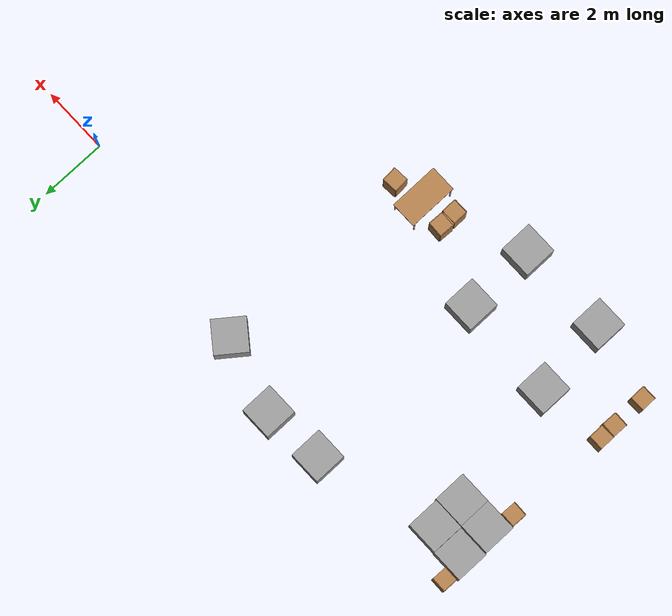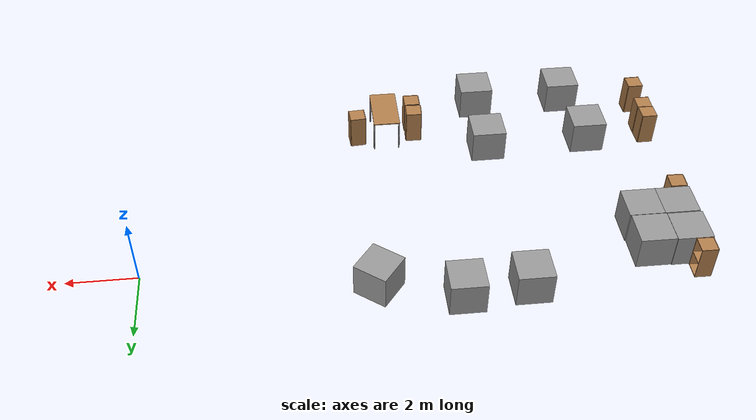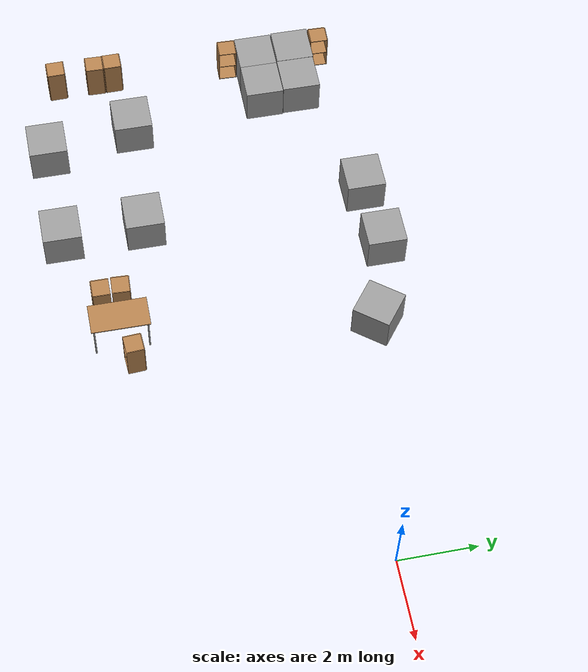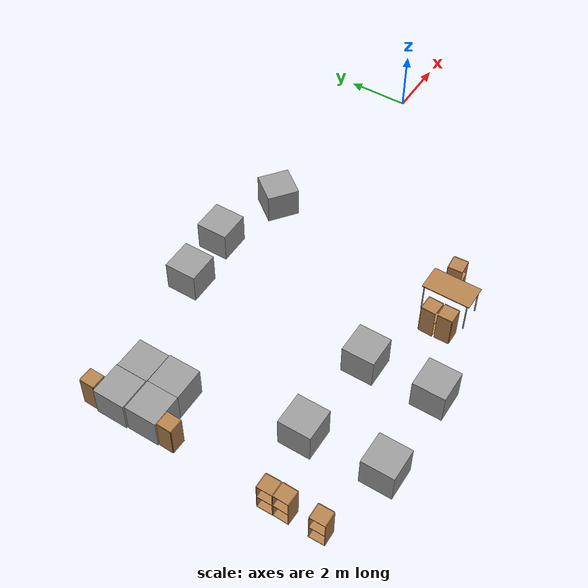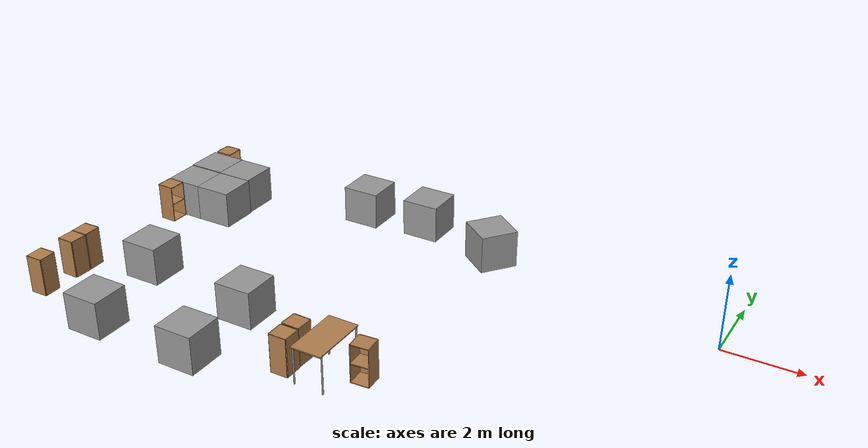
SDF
<sdf version="1.4">
 <world name="default">
  <model name="unit_box_10">
   <pose>-13.3082 -4.25233 0.726005 0 -0 0.000186</pose>
   <link name="link">
    <inertial>
     <mass>1</mass>
     <inertia><ixx>1</ixx><ixy>0</ixy><ixz>0</ixz><iyy>1</iyy><iyz>0</iyz><izz>1</izz></inertia>
    </inertial>
    <collision name="collision"><geometry><box><size>0.908301 0.843927 1.45201</size></box></geometry></collision>
    <visual name="visual">
     <geometry><box><size>1 1 1</size></box></geometry>
     <material>
      <script><uri>file://media/materials/scripts/gazebo.material</uri><name>Gazebo/Grey</name></script>
     </material>
    </visual>
    <velocity_decay><linear>0</linear><angular>0</angular></velocity_decay>
   </link>
   <static>0</static>
  </model>
  <model name="table">
   <static>1</static>
   <link name="link">
    <collision name="surface">
     <pose>0 0 1 0 -0 0</pose>
     <geometry><box><size>1.5 0.8 0.03</size></box></geometry>
     <surface><friction><ode><mu>0.6</mu><mu2>0.6</mu2></ode></friction></surface>
    </collision>
    <visual name="visual1">
     <pose>0 0 1 0 -0 0</pose>
     <geometry><box><size>1.5 0.8 0.03</size></box></geometry>
     <material>
      <script><uri>file://media/materials/scripts/gazebo.material</uri><name>Gazebo/Wood</name></script>
     </material>
    </visual>
    <collision name="front_left_leg">
     <pose>0.68 0.38 0.5 0 -0 0</pose>
     <geometry><cylinder><radius>0.02</radius><length>1</length></cylinder></geometry>
    </collision>
    <visual name="front_left_leg">
     <pose>0.68 0.38 0.5 0 -0 0</pose>
     <geometry><cylinder><radius>0.02</radius><length>1</length></cylinder></geometry>
     <material>
      <script><uri>file://media/materials/scripts/gazebo.material</uri><name>Gazebo/Grey</name></script>
     </material>
    </visual>
    <collision name="front_right_leg">
     <pose>0.68 -0.38 0.5 0 -0 0</pose>
     <geometry><cylinder><radius>0.02</radius><length>1</length></cylinder></geometry>
    </collision>
    <visual name="front_right_leg">
     <pose>0.68 -0.38 0.5 0 -0 0</pose>
     <geometry><cylinder><radius>0.02</radius><length>1</length></cylinder></geometry>
     <material>
      <script><uri>file://media/materials/scripts/gazebo.material</uri><name>Gazebo/Grey</name></script>
     </material>
    </visual>
    <collision name="back_right_leg">
     <pose>-0.68 -0.38 0.5 0 -0 0</pose>
     <geometry><cylinder><radius>0.02</radius><length>1</length></cylinder></geometry>
    </collision>
    <visual name="back_right_leg">
     <pose>-0.68 -0.38 0.5 0 -0 0</pose>
     <geometry><cylinder><radius>0.02</radius><length>1</length></cylinder></geometry>
     <material>
      <script><uri>file://media/materials/scripts/gazebo.material</uri><name>Gazebo/Grey</name></script>
     </material>
    </visual>
    <collision name="back_left_leg">
     <pose>-0.68 0.38 0.5 0 -0 0</pose>
     <geometry><cylinder><radius>0.02</radius><length>1</length></cylinder></geometry>
    </collision>
    <visual name="back_left_leg">
     <pose>-0.68 0.38 0.5 0 -0 0</pose>
     <geometry><cylinder><radius>0.02</radius><length>1</length></cylinder></geometry>
     <material>
      <script><uri>file://media/materials/scripts/gazebo.material</uri><name>Gazebo/Grey</name></script>
     </material>
    </visual>
    <velocity_decay><linear>0</linear><angular>0</angular></velocity_decay>
   </link>
   <pose>-7.25274 -5.46109 0 0 0 -1.57106</pose>
  </model>
  <model name="unit_box_1_0">
   <pose>-15.0297 0.464499 0.5 0 -0 -0.002706</pose>
   <link name="link">
    <inertial>
     <mass>1</mass>
     <inertia><ixx>1</ixx><ixy>0</ixy><ixz>0</ixz><iyy>1</iyy><iyz>0</iyz><izz>1</izz></inertia>
    </inertial>
    <collision name="collision"><geometry><box><size>1 1 1</size></box></geometry></collision>
    <visual name="visual">
     <geometry><box><size>1 1 1</size></box></geometry>
     <material>
      <script><uri>file://media/materials/scripts/gazebo.material</uri><name>Gazebo/Grey</name></script>
     </material>
    </visual>
    <velocity_decay><linear>0</linear><angular>0</angular></velocity_decay>
   </link>
   <static>0</static>
  </model>
  <model name="unit_box_3_0">
   <pose>-14.0262 0.442956 0.5 0 0 -0.004674</pose>
   <link name="link">
    <inertial>
     <mass>1</mass>
     <inertia><ixx>1</ixx><ixy>0</ixy><ixz>0</ixz><iyy>1</iyy><iyz>0</iyz><izz>1</izz></inertia>
    </inertial>
    <collision name="collision"><geometry><box><size>1 1 1</size></box></geometry></collision>
    <visual name="visual">
     <geometry><box><size>1 1 1</size></box></geometry>
     <material>
      <script><uri>file://media/materials/scripts/gazebo.material</uri><name>Gazebo/Grey</name></script>
     </material>
    </visual>
    <velocity_decay><linear>0</linear><angular>0</angular></velocity_decay>
   </link>
   <static>0</static>
  </model>
  <model name="unit_box_4">
   <pose>-15 -0.567665 0.5 -0 -0 -0</pose>
   <link name="link">
    <inertial>
     <mass>1</mass>
     <inertia><ixx>1</ixx><ixy>0</ixy><ixz>0</ixz><iyy>1</iyy><iyz>0</iyz><izz>1</izz></inertia>
    </inertial>
    <collision name="collision"><geometry><box><size>1 1 1</size></box></geometry></collision>
    <visual name="visual">
     <geometry><box><size>1 1 1</size></box></geometry>
     <material>
      <script><uri>file://media/materials/scripts/gazebo.material</uri><name>Gazebo/Grey</name></script>
     </material>
    </visual>
    <velocity_decay><linear>0</linear><angular>0</angular></velocity_decay>
   </link>
   <static>0</static>
  </model>
  <model name="unit_box_5_0">
   <pose>-14 -0.568383 0.5 0 -0 0</pose>
   <link name="link">
    <inertial>
     <mass>1</mass>
     <inertia><ixx>1</ixx><ixy>0</ixy><ixz>0</ixz><iyy>1</iyy><iyz>0</iyz><izz>1</izz></inertia>
    </inertial>
    <collision name="collision"><geometry><box><size>1 1 1</size></box></geometry></collision>
    <visual name="visual">
     <geometry><box><size>1 1 1</size></box></geometry>
     <material>
      <script><uri>file://media/materials/scripts/gazebo.material</uri><name>Gazebo/Grey</name></script>
     </material>
    </visual>
    <velocity_decay><linear>0</linear><angular>0</angular></velocity_decay>
   </link>
   <static>0</static>
  </model>
  <model name="cabinet">
   <static>1</static>
   <link name="cabinet_bottom_plate">
    <inertial>
     <pose>0 0 -1 0 -0 0</pose>
     <inertia><ixx>2.05</ixx><ixy>0</ixy><ixz>0</ixz><iyy>2.05</iyy><iyz>0</iyz><izz>2.05</izz></inertia>
     <mass>25</mass>
    </inertial>
    <collision name="cabinet_bottom_plate_geom">
     <pose>0 0 0.01 0 -0 0</pose>
     <geometry><box><size>0.45 0.45 0.02</size></box></geometry>
    </collision>
    <visual name="cabinet_bottom_plate_geom_visual">
     <pose>0 0 0.01 0 -0 0</pose>
     <geometry><box><size>0.45 0.45 0.02</size></box></geometry>
     <material>
      <script><uri>file://media/materials/scripts/gazebo.material</uri><name>Gazebo/Wood</name></script>
     </material>
    </visual>
    <collision name="cabinet_bottom_plate_geom_cabinet_back_plate">
     <pose>0.235 0 0.51 0 -0 0</pose>
     <geometry><box><size>0.02 0.45 1.02</size></box></geometry>
    </collision>
    <visual name="cabinet_bottom_plate_geom_cabinet_back_plate_visual">
     <pose>0.235 0 0.51 0 -0 0</pose>
     <geometry><box><size>0.02 0.45 1.02</size></box></geometry>
     <material>
      <script><uri>file://media/materials/scripts/gazebo.material</uri><name>Gazebo/Wood</name></script>
     </material>
    </visual>
    <collision name="cabinet_bottom_plate_geom_cabinet_left_plate">
     <pose>0 0.235 0.51 0 -0 0</pose>
     <geometry><box><size>0.45 0.02 1.02</size></box></geometry>
    </collision>
    <visual name="cabinet_bottom_plate_geom_cabinet_left_plate_visual">
     <pose>0 0.235 0.51 0 -0 0</pose>
     <geometry><box><size>0.45 0.02 1.02</size></box></geometry>
     <material>
      <script><uri>file://media/materials/scripts/gazebo.material</uri><name>Gazebo/Wood</name></script>
     </material>
    </visual>
    <collision name="cabinet_bottom_plate_geom_cabinet_middle_plate">
     <pose>0 0 0.51 0 -0 0</pose>
     <geometry><box><size>0.45 0.45 0.02</size></box></geometry>
    </collision>
    <visual name="cabinet_bottom_plate_geom_cabinet_middle_plate_visual">
     <pose>0 0 0.51 0 -0 0</pose>
     <geometry><box><size>0.45 0.45 0.02</size></box></geometry>
     <material>
      <script><uri>file://media/materials/scripts/gazebo.material</uri><name>Gazebo/Wood</name></script>
     </material>
    </visual>
    <collision name="cabinet_bottom_plate_geom_cabinet_right_plate">
     <pose>0 -0.235 0.51 0 -0 0</pose>
     <geometry><box><size>0.45 0.02 1.02</size></box></geometry>
    </collision>
    <visual name="cabinet_bottom_plate_geom_cabinet_right_plate_visual">
     <pose>0 -0.235 0.51 0 -0 0</pose>
     <geometry><box><size>0.45 0.02 1.02</size></box></geometry>
     <material>
      <script><uri>file://media/materials/scripts/gazebo.material</uri><name>Gazebo/Wood</name></script>
     </material>
    </visual>
    <collision name="cabinet_bottom_plate_geom_cabinet_top_plate">
     <pose>0 0 1.01 0 -0 0</pose>
     <geometry><box><size>0.45 0.45 0.02</size></box></geometry>
    </collision>
    <visual name="cabinet_bottom_plate_geom_cabinet_top_plate_visual">
     <pose>0 0 1.01 0 -0 0</pose>
     <geometry><box><size>0.45 0.45 0.02</size></box></geometry>
     <material>
      <script><uri>file://media/materials/scripts/gazebo.material</uri><name>Gazebo/Wood</name></script>
     </material>
    </visual>
    <velocity_decay><linear>0</linear><angular>0</angular></velocity_decay>
   </link>
   <pose>-15.2368 1.2348 0 0 -0 3.12271</pose>
  </model>
  <model name="cabinet_0">
   <static>1</static>
   <link name="cabinet_bottom_plate">
    <inertial>
     <pose>0 0 -1 0 -0 0</pose>
     <inertia><ixx>2.05</ixx><ixy>0</ixy><ixz>0</ixz><iyy>2.05</iyy><iyz>0</iyz><izz>2.05</izz></inertia>
     <mass>25</mass>
    </inertial>
    <collision name="cabinet_bottom_plate_geom">
     <pose>0 0 0.01 0 -0 0</pose>
     <geometry><box><size>0.45 0.45 0.02</size></box></geometry>
    </collision>
    <visual name="cabinet_bottom_plate_geom_visual">
     <pose>0 0 0.01 0 -0 0</pose>
     <geometry><box><size>0.45 0.45 0.02</size></box></geometry>
     <material>
      <script><uri>file://media/materials/scripts/gazebo.material</uri><name>Gazebo/Wood</name></script>
     </material>
    </visual>
    <collision name="cabinet_bottom_plate_geom_cabinet_back_plate">
     <pose>0.235 0 0.51 0 -0 0</pose>
     <geometry><box><size>0.02 0.45 1.02</size></box></geometry>
    </collision>
    <visual name="cabinet_bottom_plate_geom_cabinet_back_plate_visual">
     <pose>0.235 0 0.51 0 -0 0</pose>
     <geometry><box><size>0.02 0.45 1.02</size></box></geometry>
     <material>
      <script><uri>file://media/materials/scripts/gazebo.material</uri><name>Gazebo/Wood</name></script>
     </material>
    </visual>
    <collision name="cabinet_bottom_plate_geom_cabinet_left_plate">
     <pose>0 0.235 0.51 0 -0 0</pose>
     <geometry><box><size>0.45 0.02 1.02</size></box></geometry>
    </collision>
    <visual name="cabinet_bottom_plate_geom_cabinet_left_plate_visual">
     <pose>0 0.235 0.51 0 -0 0</pose>
     <geometry><box><size>0.45 0.02 1.02</size></box></geometry>
     <material>
      <script><uri>file://media/materials/scripts/gazebo.material</uri><name>Gazebo/Wood</name></script>
     </material>
    </visual>
    <collision name="cabinet_bottom_plate_geom_cabinet_middle_plate">
     <pose>0 0 0.51 0 -0 0</pose>
     <geometry><box><size>0.45 0.45 0.02</size></box></geometry>
    </collision>
    <visual name="cabinet_bottom_plate_geom_cabinet_middle_plate_visual">
     <pose>0 0 0.51 0 -0 0</pose>
     <geometry><box><size>0.45 0.45 0.02</size></box></geometry>
     <material>
      <script><uri>file://media/materials/scripts/gazebo.material</uri><name>Gazebo/Wood</name></script>
     </material>
    </visual>
    <collision name="cabinet_bottom_plate_geom_cabinet_right_plate">
     <pose>0 -0.235 0.51 0 -0 0</pose>
     <geometry><box><size>0.45 0.02 1.02</size></box></geometry>
    </collision>
    <visual name="cabinet_bottom_plate_geom_cabinet_right_plate_visual">
     <pose>0 -0.235 0.51 0 -0 0</pose>
     <geometry><box><size>0.45 0.02 1.02</size></box></geometry>
     <material>
      <script><uri>file://media/materials/scripts/gazebo.material</uri><name>Gazebo/Wood</name></script>
     </material>
    </visual>
    <collision name="cabinet_bottom_plate_geom_cabinet_top_plate">
     <pose>0 0 1.01 0 -0 0</pose>
     <geometry><box><size>0.45 0.45 0.02</size></box></geometry>
    </collision>
    <visual name="cabinet_bottom_plate_geom_cabinet_top_plate_visual">
     <pose>0 0 1.01 0 -0 0</pose>
     <geometry><box><size>0.45 0.45 0.02</size></box></geometry>
     <material>
      <script><uri>file://media/materials/scripts/gazebo.material</uri><name>Gazebo/Wood</name></script>
     </material>
    </visual>
    <velocity_decay><linear>0</linear><angular>0</angular></velocity_decay>
   </link>
   <pose>-15.2316 -1.32262 0 0 -0 3.11201</pose>
  </model>
  <model name="unit_box_6_0">
   <pose>-10.4729 1.46663 0.5 0 -0 0</pose>
   <link name="link">
    <inertial>
     <mass>1</mass>
     <inertia><ixx>1</ixx><ixy>0</ixy><ixz>0</ixz><iyy>1</iyy><iyz>0</iyz><izz>1</izz></inertia>
    </inertial>
    <collision name="collision"><geometry><box><size>1 1 1</size></box></geometry></collision>
    <visual name="visual">
     <geometry><box><size>1 1 1</size></box></geometry>
     <material>
      <script><uri>file://media/materials/scripts/gazebo.material</uri><name>Gazebo/Grey</name></script>
     </material>
    </visual>
    <velocity_decay><linear>0</linear><angular>0</angular></velocity_decay>
   </link>
   <static>0</static>
  </model>
  <model name="unit_box_7_0">
   <pose>-8.67559 1.61903 0.5 0 -0 0</pose>
   <link name="link">
    <inertial>
     <mass>1</mass>
     <inertia><ixx>1</ixx><ixy>0</ixy><ixz>0</ixz><iyy>1</iyy><iyz>0</iyz><izz>1</izz></inertia>
    </inertial>
    <collision name="collision"><geometry><box><size>1 1 1</size></box></geometry></collision>
    <visual name="visual">
     <geometry><box><size>1 1 1</size></box></geometry>
     <material>
      <script><uri>file://media/materials/scripts/gazebo.material</uri><name>Gazebo/Grey</name></script>
     </material>
    </visual>
    <velocity_decay><linear>0</linear><angular>0</angular></velocity_decay>
   </link>
   <static>0</static>
  </model>
  <model name="unit_box_8_0">
   <pose>-6.44714 0.990119 0.5 0 0 -0.653267</pose>
   <link name="link">
    <inertial>
     <mass>1</mass>
     <inertia><ixx>1</ixx><ixy>0</ixy><ixz>0</ixz><iyy>1</iyy><iyz>0</iyz><izz>1</izz></inertia>
    </inertial>
    <collision name="collision"><geometry><box><size>1 1 1</size></box></geometry></collision>
    <visual name="visual">
     <geometry><box><size>1 1 1</size></box></geometry>
     <material>
      <script><uri>file://media/materials/scripts/gazebo.material</uri><name>Gazebo/Grey</name></script>
     </material>
    </visual>
    <velocity_decay><linear>0</linear><angular>0</angular></velocity_decay>
   </link>
   <static>0</static>
  </model>
  <model name="cabinet_4">
   <static>1</static>
   <link name="cabinet_bottom_plate">
    <inertial>
     <pose>0 0 -1 0 -0 0</pose>
     <inertia><ixx>2.05</ixx><ixy>0</ixy><ixz>0</ixz><iyy>2.05</iyy><iyz>0</iyz><izz>2.05</izz></inertia>
     <mass>25</mass>
    </inertial>
    <collision name="cabinet_bottom_plate_geom">
     <pose>0 0 0.01 0 -0 0</pose>
     <geometry><box><size>0.45 0.45 0.02</size></box></geometry>
    </collision>
    <visual name="cabinet_bottom_plate_geom_visual">
     <pose>0 0 0.01 0 -0 0</pose>
     <geometry><box><size>0.45 0.45 0.02</size></box></geometry>
     <material>
      <script><uri>file://media/materials/scripts/gazebo.material</uri><name>Gazebo/Wood</name></script>
     </material>
    </visual>
    <collision name="cabinet_bottom_plate_geom_cabinet_back_plate">
     <pose>0.235 0 0.51 0 -0 0</pose>
     <geometry><box><size>0.02 0.45 1.02</size></box></geometry>
    </collision>
    <visual name="cabinet_bottom_plate_geom_cabinet_back_plate_visual">
     <pose>0.235 0 0.51 0 -0 0</pose>
     <geometry><box><size>0.02 0.45 1.02</size></box></geometry>
     <material>
      <script><uri>file://media/materials/scripts/gazebo.material</uri><name>Gazebo/Wood</name></script>
     </material>
    </visual>
    <collision name="cabinet_bottom_plate_geom_cabinet_left_plate">
     <pose>0 0.235 0.51 0 -0 0</pose>
     <geometry><box><size>0.45 0.02 1.02</size></box></geometry>
    </collision>
    <visual name="cabinet_bottom_plate_geom_cabinet_left_plate_visual">
     <pose>0 0.235 0.51 0 -0 0</pose>
     <geometry><box><size>0.45 0.02 1.02</size></box></geometry>
     <material>
      <script><uri>file://media/materials/scripts/gazebo.material</uri><name>Gazebo/Wood</name></script>
     </material>
    </visual>
    <collision name="cabinet_bottom_plate_geom_cabinet_middle_plate">
     <pose>0 0 0.51 0 -0 0</pose>
     <geometry><box><size>0.45 0.45 0.02</size></box></geometry>
    </collision>
    <visual name="cabinet_bottom_plate_geom_cabinet_middle_plate_visual">
     <pose>0 0 0.51 0 -0 0</pose>
     <geometry><box><size>0.45 0.45 0.02</size></box></geometry>
     <material>
      <script><uri>file://media/materials/scripts/gazebo.material</uri><name>Gazebo/Wood</name></script>
     </material>
    </visual>
    <collision name="cabinet_bottom_plate_geom_cabinet_right_plate">
     <pose>0 -0.235 0.51 0 -0 0</pose>
     <geometry><box><size>0.45 0.02 1.02</size></box></geometry>
    </collision>
    <visual name="cabinet_bottom_plate_geom_cabinet_right_plate_visual">
     <pose>0 -0.235 0.51 0 -0 0</pose>
     <geometry><box><size>0.45 0.02 1.02</size></box></geometry>
     <material>
      <script><uri>file://media/materials/scripts/gazebo.material</uri><name>Gazebo/Wood</name></script>
     </material>
    </visual>
    <collision name="cabinet_bottom_plate_geom_cabinet_top_plate">
     <pose>0 0 1.01 0 -0 0</pose>
     <geometry><box><size>0.45 0.45 0.02</size></box></geometry>
    </collision>
    <visual name="cabinet_bottom_plate_geom_cabinet_top_plate_visual">
     <pose>0 0 1.01 0 -0 0</pose>
     <geometry><box><size>0.45 0.45 0.02</size></box></geometry>
     <material>
      <script><uri>file://media/materials/scripts/gazebo.material</uri><name>Gazebo/Wood</name></script>
     </material>
    </visual>
    <velocity_decay><linear>0</linear><angular>0</angular></velocity_decay>
   </link>
   <pose>-6.379 -5.23291 0 0 -0 1.63864</pose>
  </model>
  <model name="cabinet_6">
   <static>1</static>
   <link name="cabinet_bottom_plate">
    <inertial>
     <pose>0 0 -1 0 -0 0</pose>
     <inertia><ixx>2.05</ixx><ixy>0</ixy><ixz>0</ixz><iyy>2.05</iyy><iyz>0</iyz><izz>2.05</izz></inertia>
     <mass>25</mass>
    </inertial>
    <collision name="cabinet_bottom_plate_geom">
     <pose>0 0 0.01 0 -0 0</pose>
     <geometry><box><size>0.45 0.45 0.02</size></box></geometry>
    </collision>
    <visual name="cabinet_bottom_plate_geom_visual">
     <pose>0 0 0.01 0 -0 0</pose>
     <geometry><box><size>0.45 0.45 0.02</size></box></geometry>
     <material>
      <script><uri>file://media/materials/scripts/gazebo.material</uri><name>Gazebo/Wood</name></script>
     </material>
    </visual>
    <collision name="cabinet_bottom_plate_geom_cabinet_back_plate">
     <pose>0.235 0 0.51 0 -0 0</pose>
     <geometry><box><size>0.02 0.45 1.02</size></box></geometry>
    </collision>
    <visual name="cabinet_bottom_plate_geom_cabinet_back_plate_visual">
     <pose>0.235 0 0.51 0 -0 0</pose>
     <geometry><box><size>0.02 0.45 1.02</size></box></geometry>
     <material>
      <script><uri>file://media/materials/scripts/gazebo.material</uri><name>Gazebo/Wood</name></script>
     </material>
    </visual>
    <collision name="cabinet_bottom_plate_geom_cabinet_left_plate">
     <pose>0 0.235 0.51 0 -0 0</pose>
     <geometry><box><size>0.45 0.02 1.02</size></box></geometry>
    </collision>
    <visual name="cabinet_bottom_plate_geom_cabinet_left_plate_visual">
     <pose>0 0.235 0.51 0 -0 0</pose>
     <geometry><box><size>0.45 0.02 1.02</size></box></geometry>
     <material>
      <script><uri>file://media/materials/scripts/gazebo.material</uri><name>Gazebo/Wood</name></script>
     </material>
    </visual>
    <collision name="cabinet_bottom_plate_geom_cabinet_middle_plate">
     <pose>0 0 0.51 0 -0 0</pose>
     <geometry><box><size>0.45 0.45 0.02</size></box></geometry>
    </collision>
    <visual name="cabinet_bottom_plate_geom_cabinet_middle_plate_visual">
     <pose>0 0 0.51 0 -0 0</pose>
     <geometry><box><size>0.45 0.45 0.02</size></box></geometry>
     <material>
      <script><uri>file://media/materials/scripts/gazebo.material</uri><name>Gazebo/Wood</name></script>
     </material>
    </visual>
    <collision name="cabinet_bottom_plate_geom_cabinet_right_plate">
     <pose>0 -0.235 0.51 0 -0 0</pose>
     <geometry><box><size>0.45 0.02 1.02</size></box></geometry>
    </collision>
    <visual name="cabinet_bottom_plate_geom_cabinet_right_plate_visual">
     <pose>0 -0.235 0.51 0 -0 0</pose>
     <geometry><box><size>0.45 0.02 1.02</size></box></geometry>
     <material>
      <script><uri>file://media/materials/scripts/gazebo.material</uri><name>Gazebo/Wood</name></script>
     </material>
    </visual>
    <collision name="cabinet_bottom_plate_geom_cabinet_top_plate">
     <pose>0 0 1.01 0 -0 0</pose>
     <geometry><box><size>0.45 0.45 0.02</size></box></geometry>
    </collision>
    <visual name="cabinet_bottom_plate_geom_cabinet_top_plate_visual">
     <pose>0 0 1.01 0 -0 0</pose>
     <geometry><box><size>0.45 0.45 0.02</size></box></geometry>
     <material>
      <script><uri>file://media/materials/scripts/gazebo.material</uri><name>Gazebo/Wood</name></script>
     </material>
    </visual>
    <velocity_decay><linear>0</linear><angular>0</angular></velocity_decay>
   </link>
   <pose>-8.13721 -5.30395 0 0 -0 1.53077</pose>
  </model>
  <model name="cabinet_7">
   <static>1</static>
   <link name="cabinet_bottom_plate">
    <inertial>
     <pose>0 0 -1 0 -0 0</pose>
     <inertia><ixx>2.05</ixx><ixy>0</ixy><ixz>0</ixz><iyy>2.05</iyy><iyz>0</iyz><izz>2.05</izz></inertia>
     <mass>25</mass>
    </inertial>
    <collision name="cabinet_bottom_plate_geom">
     <pose>0 0 0.01 0 -0 0</pose>
     <geometry><box><size>0.45 0.45 0.02</size></box></geometry>
    </collision>
    <visual name="cabinet_bottom_plate_geom_visual">
     <pose>0 0 0.01 0 -0 0</pose>
     <geometry><box><size>0.45 0.45 0.02</size></box></geometry>
     <material>
      <script><uri>file://media/materials/scripts/gazebo.material</uri><name>Gazebo/Wood</name></script>
     </material>
    </visual>
    <collision name="cabinet_bottom_plate_geom_cabinet_back_plate">
     <pose>0.235 0 0.51 0 -0 0</pose>
     <geometry><box><size>0.02 0.45 1.02</size></box></geometry>
    </collision>
    <visual name="cabinet_bottom_plate_geom_cabinet_back_plate_visual">
     <pose>0.235 0 0.51 0 -0 0</pose>
     <geometry><box><size>0.02 0.45 1.02</size></box></geometry>
     <material>
      <script><uri>file://media/materials/scripts/gazebo.material</uri><name>Gazebo/Wood</name></script>
     </material>
    </visual>
    <collision name="cabinet_bottom_plate_geom_cabinet_left_plate">
     <pose>0 0.235 0.51 0 -0 0</pose>
     <geometry><box><size>0.45 0.02 1.02</size></box></geometry>
    </collision>
    <visual name="cabinet_bottom_plate_geom_cabinet_left_plate_visual">
     <pose>0 0.235 0.51 0 -0 0</pose>
     <geometry><box><size>0.45 0.02 1.02</size></box></geometry>
     <material>
      <script><uri>file://media/materials/scripts/gazebo.material</uri><name>Gazebo/Wood</name></script>
     </material>
    </visual>
    <collision name="cabinet_bottom_plate_geom_cabinet_middle_plate">
     <pose>0 0 0.51 0 -0 0</pose>
     <geometry><box><size>0.45 0.45 0.02</size></box></geometry>
    </collision>
    <visual name="cabinet_bottom_plate_geom_cabinet_middle_plate_visual">
     <pose>0 0 0.51 0 -0 0</pose>
     <geometry><box><size>0.45 0.45 0.02</size></box></geometry>
     <material>
      <script><uri>file://media/materials/scripts/gazebo.material</uri><name>Gazebo/Wood</name></script>
     </material>
    </visual>
    <collision name="cabinet_bottom_plate_geom_cabinet_right_plate">
     <pose>0 -0.235 0.51 0 -0 0</pose>
     <geometry><box><size>0.45 0.02 1.02</size></box></geometry>
    </collision>
    <visual name="cabinet_bottom_plate_geom_cabinet_right_plate_visual">
     <pose>0 -0.235 0.51 0 -0 0</pose>
     <geometry><box><size>0.45 0.02 1.02</size></box></geometry>
     <material>
      <script><uri>file://media/materials/scripts/gazebo.material</uri><name>Gazebo/Wood</name></script>
     </material>
    </visual>
    <collision name="cabinet_bottom_plate_geom_cabinet_top_plate">
     <pose>0 0 1.01 0 -0 0</pose>
     <geometry><box><size>0.45 0.45 0.02</size></box></geometry>
    </collision>
    <visual name="cabinet_bottom_plate_geom_cabinet_top_plate_visual">
     <pose>0 0 1.01 0 -0 0</pose>
     <geometry><box><size>0.45 0.45 0.02</size></box></geometry>
     <material>
      <script><uri>file://media/materials/scripts/gazebo.material</uri><name>Gazebo/Wood</name></script>
     </material>
    </visual>
    <velocity_decay><linear>0</linear><angular>0</angular></velocity_decay>
   </link>
   <pose>-8.13043 -5.80473 0 0 0 -1.57073</pose>
  </model>
  <model name="unit_box_21_0">
   <pose>-13.0478 -6.57429 0.5 0 -0 0</pose>
   <link name="link">
    <inertial>
     <mass>1</mass>
     <inertia><ixx>1</ixx><ixy>0</ixy><ixz>0</ixz><iyy>1</iyy><iyz>0</iyz><izz>1</izz></inertia>
    </inertial>
    <collision name="collision"><geometry><box><size>1 1 1</size></box></geometry></collision>
    <visual name="visual">
     <geometry><box><size>1 1 1</size></box></geometry>
     <material>
      <script><uri>file://media/materials/scripts/gazebo.material</uri><name>Gazebo/Grey</name></script>
     </material>
    </visual>
    <velocity_decay><linear>0</linear><angular>0</angular></velocity_decay>
   </link>
   <static>0</static>
  </model>
  <model name="unit_box_22">
   <pose>-10.2947 -4.4035 0.5 0 -0 0</pose>
   <link name="link">
    <inertial>
     <mass>1</mass>
     <inertia><ixx>1</ixx><ixy>0</ixy><ixz>0</ixz><iyy>1</iyy><iyz>0</iyz><izz>1</izz></inertia>
    </inertial>
    <collision name="collision"><geometry><box><size>1 1 1</size></box></geometry></collision>
    <visual name="visual">
     <geometry><box><size>1 1 1</size></box></geometry>
     <material>
      <script><uri>file://media/materials/scripts/gazebo.material</uri><name>Gazebo/Grey</name></script>
     </material>
    </visual>
    <velocity_decay><linear>0</linear><angular>0</angular></velocity_decay>
   </link>
   <static>0</static>
  </model>
  <model name="unit_box_23">
   <pose>-10.2581 -6.55968 0.5 0 -0 0</pose>
   <link name="link">
    <inertial>
     <mass>1</mass>
     <inertia><ixx>1</ixx><ixy>0</ixy><ixz>0</ixz><iyy>1</iyy><iyz>0</iyz><izz>1</izz></inertia>
    </inertial>
    <collision name="collision"><geometry><box><size>1 1 1</size></box></geometry></collision>
    <visual name="visual">
     <geometry><box><size>1 1 1</size></box></geometry>
     <material>
      <script><uri>file://media/materials/scripts/gazebo.material</uri><name>Gazebo/Grey</name></script>
     </material>
    </visual>
    <velocity_decay><linear>0</linear><angular>0</angular></velocity_decay>
   </link>
   <static>0</static>
  </model>
  <model name="cabinet_8">
   <static>1</static>
   <link name="cabinet_bottom_plate">
    <inertial>
     <pose>0 0 -1 0 -0 0</pose>
     <inertia><ixx>2.05</ixx><ixy>0</ixy><ixz>0</ixz><iyy>2.05</iyy><iyz>0</iyz><izz>2.05</izz></inertia>
     <mass>25</mass>
    </inertial>
    <collision name="cabinet_bottom_plate_geom">
     <pose>0 0 0.01 0 -0 0</pose>
     <geometry><box><size>0.45 0.45 0.02</size></box></geometry>
    </collision>
    <visual name="cabinet_bottom_plate_geom_visual">
     <pose>0 0 0.01 0 -0 0</pose>
     <geometry><box><size>0.45 0.45 0.02</size></box></geometry>
     <material>
      <script><uri>file://media/materials/scripts/gazebo.material</uri><name>Gazebo/Wood</name></script>
     </material>
    </visual>
    <collision name="cabinet_bottom_plate_geom_cabinet_back_plate">
     <pose>0.235 0 0.51 0 -0 0</pose>
     <geometry><box><size>0.02 0.45 1.02</size></box></geometry>
    </collision>
    <visual name="cabinet_bottom_plate_geom_cabinet_back_plate_visual">
     <pose>0.235 0 0.51 0 -0 0</pose>
     <geometry><box><size>0.02 0.45 1.02</size></box></geometry>
     <material>
      <script><uri>file://media/materials/scripts/gazebo.material</uri><name>Gazebo/Wood</name></script>
     </material>
    </visual>
    <collision name="cabinet_bottom_plate_geom_cabinet_left_plate">
     <pose>0 0.235 0.51 0 -0 0</pose>
     <geometry><box><size>0.45 0.02 1.02</size></box></geometry>
    </collision>
    <visual name="cabinet_bottom_plate_geom_cabinet_left_plate_visual">
     <pose>0 0.235 0.51 0 -0 0</pose>
     <geometry><box><size>0.45 0.02 1.02</size></box></geometry>
     <material>
      <script><uri>file://media/materials/scripts/gazebo.material</uri><name>Gazebo/Wood</name></script>
     </material>
    </visual>
    <collision name="cabinet_bottom_plate_geom_cabinet_middle_plate">
     <pose>0 0 0.51 0 -0 0</pose>
     <geometry><box><size>0.45 0.45 0.02</size></box></geometry>
    </collision>
    <visual name="cabinet_bottom_plate_geom_cabinet_middle_plate_visual">
     <pose>0 0 0.51 0 -0 0</pose>
     <geometry><box><size>0.45 0.45 0.02</size></box></geometry>
     <material>
      <script><uri>file://media/materials/scripts/gazebo.material</uri><name>Gazebo/Wood</name></script>
     </material>
    </visual>
    <collision name="cabinet_bottom_plate_geom_cabinet_right_plate">
     <pose>0 -0.235 0.51 0 -0 0</pose>
     <geometry><box><size>0.45 0.02 1.02</size></box></geometry>
    </collision>
    <visual name="cabinet_bottom_plate_geom_cabinet_right_plate_visual">
     <pose>0 -0.235 0.51 0 -0 0</pose>
     <geometry><box><size>0.45 0.02 1.02</size></box></geometry>
     <material>
      <script><uri>file://media/materials/scripts/gazebo.material</uri><name>Gazebo/Wood</name></script>
     </material>
    </visual>
    <collision name="cabinet_bottom_plate_geom_cabinet_top_plate">
     <pose>0 0 1.01 0 -0 0</pose>
     <geometry><box><size>0.45 0.45 0.02</size></box></geometry>
    </collision>
    <visual name="cabinet_bottom_plate_geom_cabinet_top_plate_visual">
     <pose>0 0 1.01 0 -0 0</pose>
     <geometry><box><size>0.45 0.45 0.02</size></box></geometry>
     <material>
      <script><uri>file://media/materials/scripts/gazebo.material</uri><name>Gazebo/Wood</name></script>
     </material>
    </visual>
    <velocity_decay><linear>0</linear><angular>0</angular></velocity_decay>
   </link>
   <pose>-15.3504 -4.50157 0 0 -0 0.010915</pose>
  </model>
  <model name="cabinet_9">
   <static>1</static>
   <link name="cabinet_bottom_plate">
    <inertial>
     <pose>0 0 -1 0 -0 0</pose>
     <inertia><ixx>2.05</ixx><ixy>0</ixy><ixz>0</ixz><iyy>2.05</iyy><iyz>0</iyz><izz>2.05</izz></inertia>
     <mass>25</mass>
    </inertial>
    <collision name="cabinet_bottom_plate_geom">
     <pose>0 0 0.01 0 -0 0</pose>
     <geometry><box><size>0.45 0.45 0.02</size></box></geometry>
    </collision>
    <visual name="cabinet_bottom_plate_geom_visual">
     <pose>0 0 0.01 0 -0 0</pose>
     <geometry><box><size>0.45 0.45 0.02</size></box></geometry>
     <material>
      <script><uri>file://media/materials/scripts/gazebo.material</uri><name>Gazebo/Wood</name></script>
     </material>
    </visual>
    <collision name="cabinet_bottom_plate_geom_cabinet_back_plate">
     <pose>0.235 0 0.51 0 -0 0</pose>
     <geometry><box><size>0.02 0.45 1.02</size></box></geometry>
    </collision>
    <visual name="cabinet_bottom_plate_geom_cabinet_back_plate_visual">
     <pose>0.235 0 0.51 0 -0 0</pose>
     <geometry><box><size>0.02 0.45 1.02</size></box></geometry>
     <material>
      <script><uri>file://media/materials/scripts/gazebo.material</uri><name>Gazebo/Wood</name></script>
     </material>
    </visual>
    <collision name="cabinet_bottom_plate_geom_cabinet_left_plate">
     <pose>0 0.235 0.51 0 -0 0</pose>
     <geometry><box><size>0.45 0.02 1.02</size></box></geometry>
    </collision>
    <visual name="cabinet_bottom_plate_geom_cabinet_left_plate_visual">
     <pose>0 0.235 0.51 0 -0 0</pose>
     <geometry><box><size>0.45 0.02 1.02</size></box></geometry>
     <material>
      <script><uri>file://media/materials/scripts/gazebo.material</uri><name>Gazebo/Wood</name></script>
     </material>
    </visual>
    <collision name="cabinet_bottom_plate_geom_cabinet_middle_plate">
     <pose>0 0 0.51 0 -0 0</pose>
     <geometry><box><size>0.45 0.45 0.02</size></box></geometry>
    </collision>
    <visual name="cabinet_bottom_plate_geom_cabinet_middle_plate_visual">
     <pose>0 0 0.51 0 -0 0</pose>
     <geometry><box><size>0.45 0.45 0.02</size></box></geometry>
     <material>
      <script><uri>file://media/materials/scripts/gazebo.material</uri><name>Gazebo/Wood</name></script>
     </material>
    </visual>
    <collision name="cabinet_bottom_plate_geom_cabinet_right_plate">
     <pose>0 -0.235 0.51 0 -0 0</pose>
     <geometry><box><size>0.45 0.02 1.02</size></box></geometry>
    </collision>
    <visual name="cabinet_bottom_plate_geom_cabinet_right_plate_visual">
     <pose>0 -0.235 0.51 0 -0 0</pose>
     <geometry><box><size>0.45 0.02 1.02</size></box></geometry>
     <material>
      <script><uri>file://media/materials/scripts/gazebo.material</uri><name>Gazebo/Wood</name></script>
     </material>
    </visual>
    <collision name="cabinet_bottom_plate_geom_cabinet_top_plate">
     <pose>0 0 1.01 0 -0 0</pose>
     <geometry><box><size>0.45 0.45 0.02</size></box></geometry>
    </collision>
    <visual name="cabinet_bottom_plate_geom_cabinet_top_plate_visual">
     <pose>0 0 1.01 0 -0 0</pose>
     <geometry><box><size>0.45 0.45 0.02</size></box></geometry>
     <material>
      <script><uri>file://media/materials/scripts/gazebo.material</uri><name>Gazebo/Wood</name></script>
     </material>
    </visual>
    <velocity_decay><linear>0</linear><angular>0</angular></velocity_decay>
   </link>
   <pose>-15.3439 -4.98673 0 0 0 -0.02471</pose>
  </model>
  <model name="cabinet_10">
   <static>1</static>
   <link name="cabinet_bottom_plate">
    <inertial>
     <pose>0 0 -1 0 -0 0</pose>
     <inertia><ixx>2.05</ixx><ixy>0</ixy><ixz>0</ixz><iyy>2.05</iyy><iyz>0</iyz><izz>2.05</izz></inertia>
     <mass>25</mass>
    </inertial>
    <collision name="cabinet_bottom_plate_geom">
     <pose>0 0 0.01 0 -0 0</pose>
     <geometry><box><size>0.45 0.45 0.02</size></box></geometry>
    </collision>
    <visual name="cabinet_bottom_plate_geom_visual">
     <pose>0 0 0.01 0 -0 0</pose>
     <geometry><box><size>0.45 0.45 0.02</size></box></geometry>
     <material>
      <script><uri>file://media/materials/scripts/gazebo.material</uri><name>Gazebo/Wood</name></script>
     </material>
    </visual>
    <collision name="cabinet_bottom_plate_geom_cabinet_back_plate">
     <pose>0.235 0 0.51 0 -0 0</pose>
     <geometry><box><size>0.02 0.45 1.02</size></box></geometry>
    </collision>
    <visual name="cabinet_bottom_plate_geom_cabinet_back_plate_visual">
     <pose>0.235 0 0.51 0 -0 0</pose>
     <geometry><box><size>0.02 0.45 1.02</size></box></geometry>
     <material>
      <script><uri>file://media/materials/scripts/gazebo.material</uri><name>Gazebo/Wood</name></script>
     </material>
    </visual>
    <collision name="cabinet_bottom_plate_geom_cabinet_left_plate">
     <pose>0 0.235 0.51 0 -0 0</pose>
     <geometry><box><size>0.45 0.02 1.02</size></box></geometry>
    </collision>
    <visual name="cabinet_bottom_plate_geom_cabinet_left_plate_visual">
     <pose>0 0.235 0.51 0 -0 0</pose>
     <geometry><box><size>0.45 0.02 1.02</size></box></geometry>
     <material>
      <script><uri>file://media/materials/scripts/gazebo.material</uri><name>Gazebo/Wood</name></script>
     </material>
    </visual>
    <collision name="cabinet_bottom_plate_geom_cabinet_middle_plate">
     <pose>0 0 0.51 0 -0 0</pose>
     <geometry><box><size>0.45 0.45 0.02</size></box></geometry>
    </collision>
    <visual name="cabinet_bottom_plate_geom_cabinet_middle_plate_visual">
     <pose>0 0 0.51 0 -0 0</pose>
     <geometry><box><size>0.45 0.45 0.02</size></box></geometry>
     <material>
      <script><uri>file://media/materials/scripts/gazebo.material</uri><name>Gazebo/Wood</name></script>
     </material>
    </visual>
    <collision name="cabinet_bottom_plate_geom_cabinet_right_plate">
     <pose>0 -0.235 0.51 0 -0 0</pose>
     <geometry><box><size>0.45 0.02 1.02</size></box></geometry>
    </collision>
    <visual name="cabinet_bottom_plate_geom_cabinet_right_plate_visual">
     <pose>0 -0.235 0.51 0 -0 0</pose>
     <geometry><box><size>0.45 0.02 1.02</size></box></geometry>
     <material>
      <script><uri>file://media/materials/scripts/gazebo.material</uri><name>Gazebo/Wood</name></script>
     </material>
    </visual>
    <collision name="cabinet_bottom_plate_geom_cabinet_top_plate">
     <pose>0 0 1.01 0 -0 0</pose>
     <geometry><box><size>0.45 0.45 0.02</size></box></geometry>
    </collision>
    <visual name="cabinet_bottom_plate_geom_cabinet_top_plate_visual">
     <pose>0 0 1.01 0 -0 0</pose>
     <geometry><box><size>0.45 0.45 0.02</size></box></geometry>
     <material>
      <script><uri>file://media/materials/scripts/gazebo.material</uri><name>Gazebo/Wood</name></script>
     </material>
    </visual>
    <velocity_decay><linear>0</linear><angular>0</angular></velocity_decay>
   </link>
   <pose>-15.3497 -6.0459 0 0 -0 0.01497</pose>
  </model>
 </world>
</sdf>
